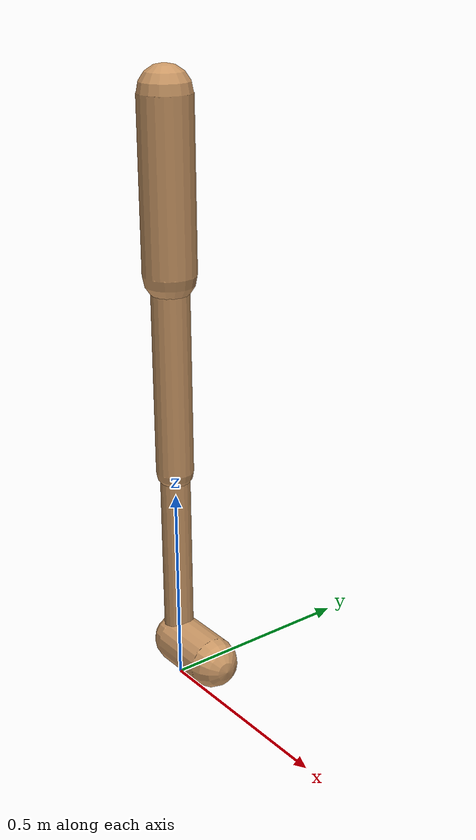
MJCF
<mujoco model="walker2d">
  <compiler angle="degree" coordinate="global" inertiafromgeom="true" />
  <default>
    <joint armature="0.01" damping=".1" limited="true" />
    <geom conaffinity="0" condim="3" contype="1" density="1000" friction="0.8 .1 .1" rgba="0.8 0.6 .4 1" />
  </default>
  <option integrator="RK4" timestep="0.002" />
  <worldbody>

    <body name="torso" pos="0 0 0.07407920327244191">
      <joint armature="0" axis="1 0 0" damping="0" limited="false" name="ignorex" pos="0 0 0" stiffness="0" type="slide" />
      <joint armature="0" axis="0 0 1" damping="0" limited="false" name="ignorez" pos="0 0 0" ref="1.25" stiffness="0" type="slide" />
      <joint armature="0" axis="0 1 0" damping="0" limited="false" name="ignorey" pos="0 0 0" stiffness="0" type="hinge" />
      <geom fromto="0 0 1.45 0 0 1.05" name="torso_geom" size="0.06293670587995259" type="capsule" />
      <body name="thigh">
        <joint axis="0 -1 0" name="thigh_joint" pos="0 0 1.05" range="-150 0" type="hinge" />
        <geom fromto="0.0 0.0 1.05 0.0 0.0 0.5649098510814748" name="thigh_geom" size="0.045218632171612094" type="capsule" />
        <body name="leg" pos="0.0 0.0 -0.03509014891852513">
          <joint axis="0 -1 0" name="leg_joint" pos="0 0 0.6" range="-150 0" type="hinge" />
          <geom fromto="0.0 0.0 0.6 0.0 0.0 0.06101094564608321" name="leg_geom" size="0.036174905737289674" type="capsule" />
          <body name="foot" pos="0.0 0.0 -0.038989054353916794">
            <joint axis="0 -1 0" name="foot_joint" pos="0 0 0.1" range="-45 45" type="hinge" />
            <geom fromto="0.0 0.0 0.1 0.14080821845243605 0.0 0.1" name="foot_geom" size="0.06172195981389518" type="capsule" />
          </body>
        </body>
      </body>

      <body name="thigh_left">
        <joint axis="0 -1 0" name="thigh_left_joint" pos="0 0 1.05" range="-150 0" type="hinge" />
        <geom fromto="0.0 0.0 1.05 0.0 0.0 0.5649098510814748" name="thigh_left_geom" rgba=".7 .3 .6 1" size="0.045218632171612094" type="capsule" />
        <body name="leg_left" pos="0.0 0.0 -0.03509014891852513">
          <joint axis="0 -1 0" name="leg_left_joint" pos="0 0 0.6" range="-150 0" type="hinge" />
          <geom fromto="0.0 0.0 0.6 0.0 0.0 0.06101094564608321" name="leg_left_geom" rgba=".7 .3 .6 1" size="0.036174905737289674" type="capsule" />
          <body name="foot_left" pos="0.0 0.0 -0.038989054353916794">
            <joint axis="0 -1 0" name="foot_left_joint" pos="0 0 0.1" range="-45 45" type="hinge" />
            <geom fromto="0.0 0.0 0.1 0.14080821845243605 0.0 0.1" name="foot_left_geom" rgba=".7 .3 .6 1" size="0.06172195981389518" type="capsule" />
          </body>
        </body>
      </body>
    </body>
  </worldbody>
  <actuator>

    <motor ctrllimited="true" ctrlrange="-1.0 1.0" gear="100" joint="thigh_joint" />
    <motor ctrllimited="true" ctrlrange="-1.0 1.0" gear="100" joint="leg_joint" />
    <motor ctrllimited="true" ctrlrange="-1.0 1.0" gear="100" joint="foot_joint" />
    <motor ctrllimited="true" ctrlrange="-1.0 1.0" gear="100" joint="thigh_left_joint" />
    <motor ctrllimited="true" ctrlrange="-1.0 1.0" gear="100" joint="leg_left_joint" />
    <motor ctrllimited="true" ctrlrange="-1.0 1.0" gear="100" joint="foot_left_joint" />

  </actuator>
</mujoco>
